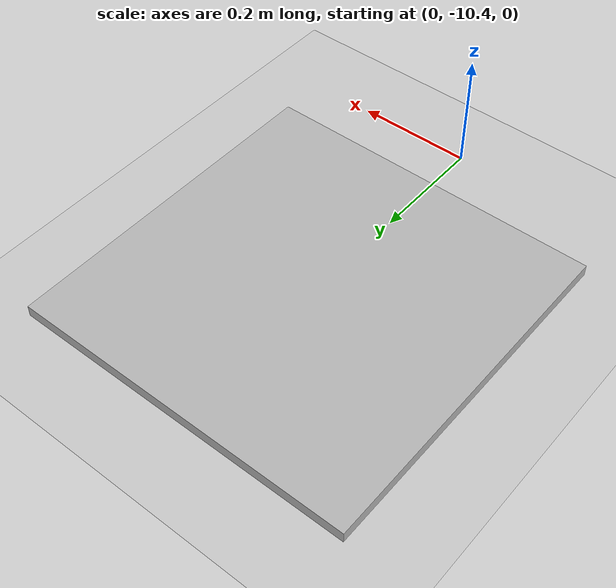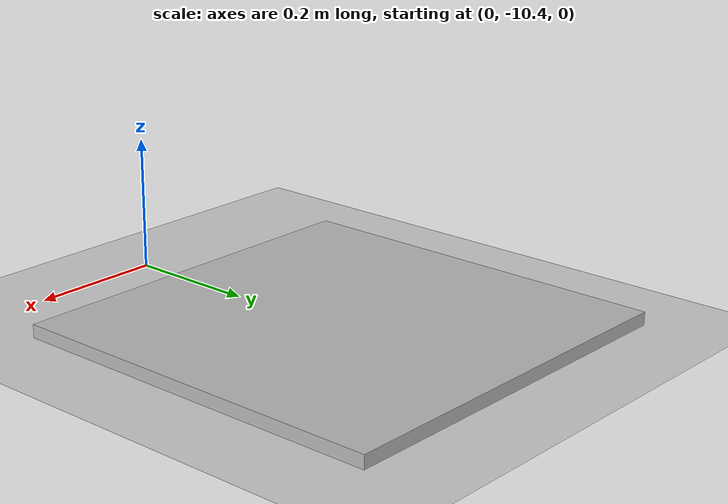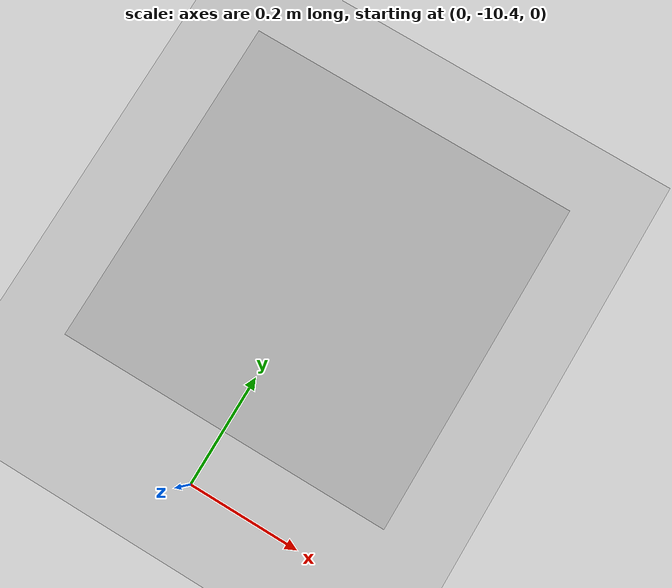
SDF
<?xml version="1.0" ?>
<sdf version="1.5">
  <world name="vs_landing_world">
    <!-- A global light source -->
    <include>
      <uri>model://sun</uri>
    </include>

    <!-- A ground plane -->
    <include>
      <uri>model://ground_plane</uri>
    </include>
    <!-- logo ground -->
    <!-- husky 1 -->
    <!-- my_pad -->
    <model name='landing_pad'>
      <include>
        <uri>model://landing_pad</uri>
	      <pose> 0.0 -10 0.01 0 0 -1.5707963 </pose>
      </include>
    </model>
    <physics name='default_physics' default='0' type='ode'>
      <gravity>0 0 -9.8066</gravity>
      <ode>
        <solver>
          <type>quick</type>
          <iters>150</iters>
          <sor>1.3</sor>
          <use_dynamic_moi_rescaling>0</use_dynamic_moi_rescaling>
        </solver>
        <constraints>
          <cfm>0.00001</cfm>
          <erp>0.2</erp>
          <contact_max_correcting_vel>1000</contact_max_correcting_vel>
          <contact_surface_layer>0.01</contact_surface_layer>
        </constraints>
      </ode>
      <max_step_size>0.004</max_step_size>
      <real_time_factor>1000.0</real_time_factor>
      <real_time_update_rate>250</real_time_update_rate>
      <magnetic_field>6.0e-6 2.3e-5 -4.2e-5</magnetic_field>
    </physics>
  </world>
</sdf>

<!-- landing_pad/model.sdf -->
<sdf version="1.5">
  <model name="landing_pad">
    <pose>5.0 0 0.01 0 0 0</pose>
    <static>true</static>
    <link name="link">
      <inertial>
        <mass>0.5</mass>
        <inertia>
          <ixx>0.001</ixx>
          <ixy>0</ixy>
          <ixz>0</ixz>
          <iyy>0.001</iyy>
          <iyz>0</iyz>
          <izz>0.001</izz>
        </inertia>
      </inertial>
      <collision name="collision">
        <geometry>
          <box>
            <size>0.6 0.6 0.02</size>
          </box>
        </geometry>
      </collision>
      <visual name="visual">
        <geometry>
          <box>
            <size>0.6 0.6 0.02</size>
          </box>
        </geometry>
        <material>
          <script>
            <uri>model://landing_pad/materials/scripts</uri>
	          <uri>model://landing_pad/materials/textures</uri>
            <name>Cube/landing_pad</name>
          </script>
        </material>
      </visual>
    </link>
  </model>
</sdf>
